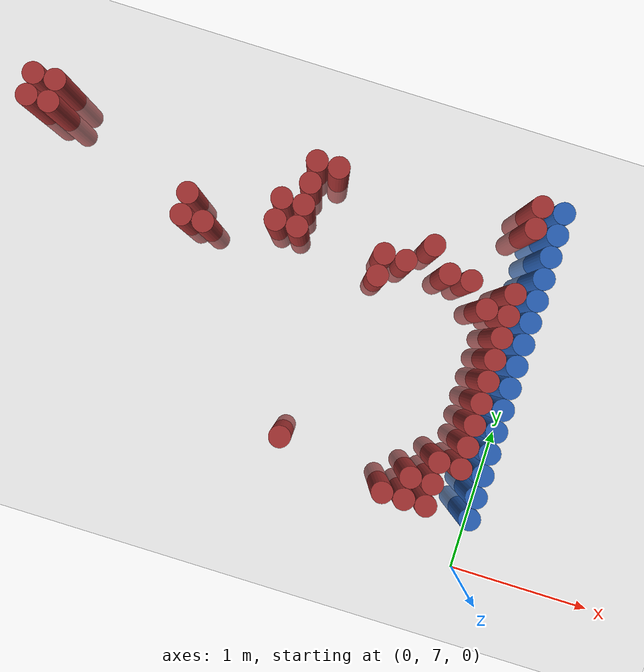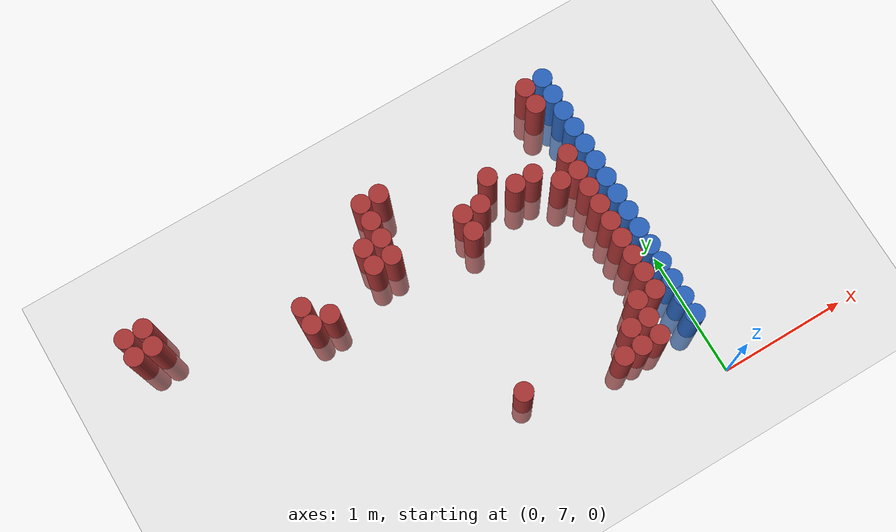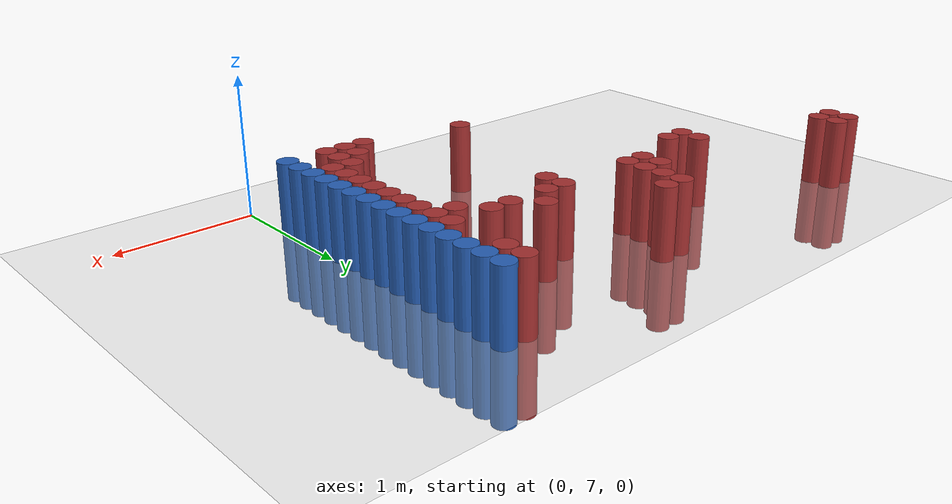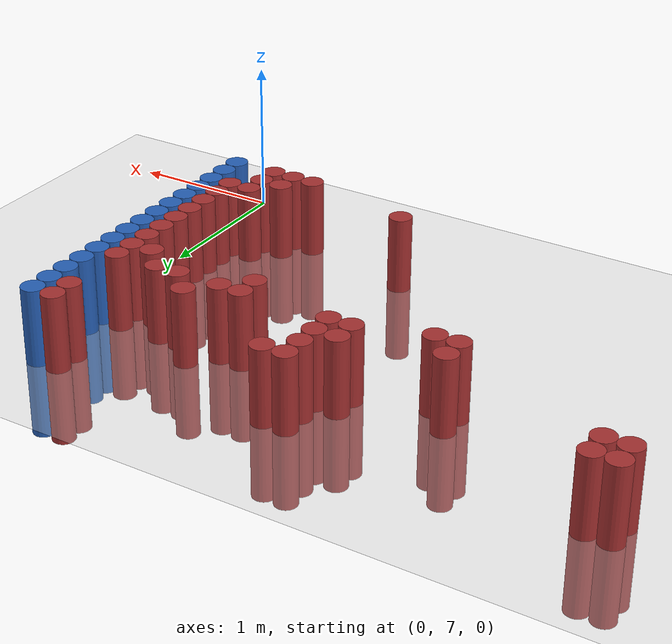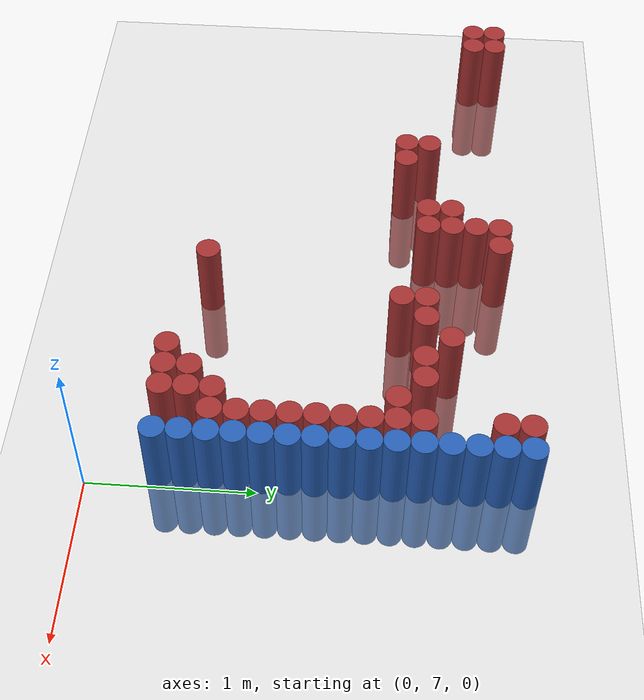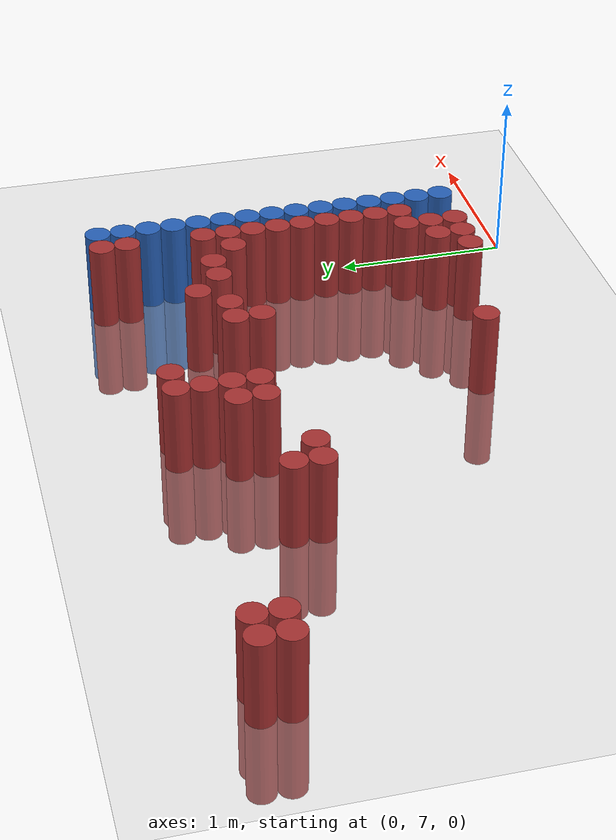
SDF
<sdf version="1.6">
 <world name="world_241">
  <model name="ground_plane">
   <static>1</static>
   <link name="link">
    <collision name="collision">
     <geometry><plane><normal>0 0 1</normal><size>100 100</size></plane></geometry>
     <surface><friction><ode><mu>100</mu><mu2>50</mu2></ode></friction></surface>
    </collision>
    <visual name="visual">
     <cast_shadows>0</cast_shadows>
     <geometry><plane><normal>0 0 1</normal><size>100 100</size></plane></geometry>
     <material>
      <script><uri>file://media/materials/scripts/gazebo.material</uri><name>Gazebo/Grey</name></script>
     </material>
    </visual>
   </link>
  </model>
  <model name="unit_cylinder_154">
   <static>1</static>
   <pose>-3.675000 9.225000 0.000000 0.000000 0.000000 0.000000</pose>
   <link name="link">
    <inertial>
     <mass>1</mass>
     <inertia><ixx>0.145833</ixx><ixy>0</ixy><ixz>0</ixz><iyy>0.145833</iyy><iyz>0</iyz><izz>0.125</izz></inertia>
    </inertial>
    <collision name="collision">
     <geometry><cylinder><radius>0.075000</radius><length>1</length></cylinder></geometry>
    </collision>
    <visual name="visual">
     <geometry><cylinder><radius>0.075000</radius><length>1</length></cylinder></geometry>
     <material>
      <ambient>0.648000 0.192000 0.192000 1</ambient>
      <diffuse>0.648000 0.192000 0.192000 1</diffuse>
     </material>
     <material>
      <script><name>Gazebo/Grey</name><uri>file://media/materials/scripts/gazebo.material</uri></script>
     </material>
    </visual>
   </link>
  </model>
  <model name="unit_cylinder_155">
   <static>1</static>
   <pose>-3.675000 9.375000 0.000000 0.000000 0.000000 0.000000</pose>
   <link name="link">
    <inertial>
     <mass>1</mass>
     <inertia><ixx>0.145833</ixx><ixy>0</ixy><ixz>0</ixz><iyy>0.145833</iyy><iyz>0</iyz><izz>0.125</izz></inertia>
    </inertial>
    <collision name="collision">
     <geometry><cylinder><radius>0.075000</radius><length>1</length></cylinder></geometry>
    </collision>
    <visual name="visual">
     <geometry><cylinder><radius>0.075000</radius><length>1</length></cylinder></geometry>
     <material>
      <ambient>0.648000 0.192000 0.192000 1</ambient>
      <diffuse>0.648000 0.192000 0.192000 1</diffuse>
     </material>
     <material>
      <script><name>Gazebo/Grey</name><uri>file://media/materials/scripts/gazebo.material</uri></script>
     </material>
    </visual>
   </link>
  </model>
  <model name="unit_cylinder_156">
   <static>1</static>
   <pose>-3.525000 9.225000 0.000000 0.000000 0.000000 0.000000</pose>
   <link name="link">
    <inertial>
     <mass>1</mass>
     <inertia><ixx>0.145833</ixx><ixy>0</ixy><ixz>0</ixz><iyy>0.145833</iyy><iyz>0</iyz><izz>0.125</izz></inertia>
    </inertial>
    <collision name="collision">
     <geometry><cylinder><radius>0.075000</radius><length>1</length></cylinder></geometry>
    </collision>
    <visual name="visual">
     <geometry><cylinder><radius>0.075000</radius><length>1</length></cylinder></geometry>
     <material>
      <ambient>0.648000 0.192000 0.192000 1</ambient>
      <diffuse>0.648000 0.192000 0.192000 1</diffuse>
     </material>
     <material>
      <script><name>Gazebo/Grey</name><uri>file://media/materials/scripts/gazebo.material</uri></script>
     </material>
    </visual>
   </link>
  </model>
  <model name="unit_cylinder_157">
   <static>1</static>
   <pose>-3.525000 9.375000 0.000000 0.000000 0.000000 0.000000</pose>
   <link name="link">
    <inertial>
     <mass>1</mass>
     <inertia><ixx>0.145833</ixx><ixy>0</ixy><ixz>0</ixz><iyy>0.145833</iyy><iyz>0</iyz><izz>0.125</izz></inertia>
    </inertial>
    <collision name="collision">
     <geometry><cylinder><radius>0.075000</radius><length>1</length></cylinder></geometry>
    </collision>
    <visual name="visual">
     <geometry><cylinder><radius>0.075000</radius><length>1</length></cylinder></geometry>
     <material>
      <ambient>0.648000 0.192000 0.192000 1</ambient>
      <diffuse>0.648000 0.192000 0.192000 1</diffuse>
     </material>
     <material>
      <script><name>Gazebo/Grey</name><uri>file://media/materials/scripts/gazebo.material</uri></script>
     </material>
    </visual>
   </link>
  </model>
  <model name="unit_cylinder_170">
   <static>1</static>
   <pose>-2.475000 8.775000 0.000000 0.000000 0.000000 0.000000</pose>
   <link name="link">
    <inertial>
     <mass>1</mass>
     <inertia><ixx>0.145833</ixx><ixy>0</ixy><ixz>0</ixz><iyy>0.145833</iyy><iyz>0</iyz><izz>0.125</izz></inertia>
    </inertial>
    <collision name="collision">
     <geometry><cylinder><radius>0.075000</radius><length>1</length></cylinder></geometry>
    </collision>
    <visual name="visual">
     <geometry><cylinder><radius>0.075000</radius><length>1</length></cylinder></geometry>
     <material>
      <ambient>0.648000 0.192000 0.192000 1</ambient>
      <diffuse>0.648000 0.192000 0.192000 1</diffuse>
     </material>
     <material>
      <script><name>Gazebo/Grey</name><uri>file://media/materials/scripts/gazebo.material</uri></script>
     </material>
    </visual>
   </link>
  </model>
  <model name="unit_cylinder_171">
   <static>1</static>
   <pose>-2.475000 8.925000 0.000000 0.000000 0.000000 0.000000</pose>
   <link name="link">
    <inertial>
     <mass>1</mass>
     <inertia><ixx>0.145833</ixx><ixy>0</ixy><ixz>0</ixz><iyy>0.145833</iyy><iyz>0</iyz><izz>0.125</izz></inertia>
    </inertial>
    <collision name="collision">
     <geometry><cylinder><radius>0.075000</radius><length>1</length></cylinder></geometry>
    </collision>
    <visual name="visual">
     <geometry><cylinder><radius>0.075000</radius><length>1</length></cylinder></geometry>
     <material>
      <ambient>0.648000 0.192000 0.192000 1</ambient>
      <diffuse>0.648000 0.192000 0.192000 1</diffuse>
     </material>
     <material>
      <script><name>Gazebo/Grey</name><uri>file://media/materials/scripts/gazebo.material</uri></script>
     </material>
    </visual>
   </link>
  </model>
  <model name="unit_cylinder_175">
   <static>1</static>
   <pose>-2.325000 8.775000 0.000000 0.000000 0.000000 0.000000</pose>
   <link name="link">
    <inertial>
     <mass>1</mass>
     <inertia><ixx>0.145833</ixx><ixy>0</ixy><ixz>0</ixz><iyy>0.145833</iyy><iyz>0</iyz><izz>0.125</izz></inertia>
    </inertial>
    <collision name="collision">
     <geometry><cylinder><radius>0.075000</radius><length>1</length></cylinder></geometry>
    </collision>
    <visual name="visual">
     <geometry><cylinder><radius>0.075000</radius><length>1</length></cylinder></geometry>
     <material>
      <ambient>0.648000 0.192000 0.192000 1</ambient>
      <diffuse>0.648000 0.192000 0.192000 1</diffuse>
     </material>
     <material>
      <script><name>Gazebo/Grey</name><uri>file://media/materials/scripts/gazebo.material</uri></script>
     </material>
    </visual>
   </link>
  </model>
  <model name="unit_cylinder_182">
   <static>1</static>
   <pose>-1.875000 8.925000 0.000000 0.000000 0.000000 0.000000</pose>
   <link name="link">
    <inertial>
     <mass>1</mass>
     <inertia><ixx>0.145833</ixx><ixy>0</ixy><ixz>0</ixz><iyy>0.145833</iyy><iyz>0</iyz><izz>0.125</izz></inertia>
    </inertial>
    <collision name="collision">
     <geometry><cylinder><radius>0.075000</radius><length>1</length></cylinder></geometry>
    </collision>
    <visual name="visual">
     <geometry><cylinder><radius>0.075000</radius><length>1</length></cylinder></geometry>
     <material>
      <ambient>0.648000 0.192000 0.192000 1</ambient>
      <diffuse>0.648000 0.192000 0.192000 1</diffuse>
     </material>
     <material>
      <script><name>Gazebo/Grey</name><uri>file://media/materials/scripts/gazebo.material</uri></script>
     </material>
    </visual>
   </link>
  </model>
  <model name="unit_cylinder_183">
   <static>1</static>
   <pose>-1.875000 9.075000 0.000000 0.000000 0.000000 0.000000</pose>
   <link name="link">
    <inertial>
     <mass>1</mass>
     <inertia><ixx>0.145833</ixx><ixy>0</ixy><ixz>0</ixz><iyy>0.145833</iyy><iyz>0</iyz><izz>0.125</izz></inertia>
    </inertial>
    <collision name="collision">
     <geometry><cylinder><radius>0.075000</radius><length>1</length></cylinder></geometry>
    </collision>
    <visual name="visual">
     <geometry><cylinder><radius>0.075000</radius><length>1</length></cylinder></geometry>
     <material>
      <ambient>0.648000 0.192000 0.192000 1</ambient>
      <diffuse>0.648000 0.192000 0.192000 1</diffuse>
     </material>
     <material>
      <script><name>Gazebo/Grey</name><uri>file://media/materials/scripts/gazebo.material</uri></script>
     </material>
    </visual>
   </link>
  </model>
  <model name="unit_cylinder_184">
   <static>1</static>
   <pose>-1.725000 8.925000 0.000000 0.000000 0.000000 0.000000</pose>
   <link name="link">
    <inertial>
     <mass>1</mass>
     <inertia><ixx>0.145833</ixx><ixy>0</ixy><ixz>0</ixz><iyy>0.145833</iyy><iyz>0</iyz><izz>0.125</izz></inertia>
    </inertial>
    <collision name="collision">
     <geometry><cylinder><radius>0.075000</radius><length>1</length></cylinder></geometry>
    </collision>
    <visual name="visual">
     <geometry><cylinder><radius>0.075000</radius><length>1</length></cylinder></geometry>
     <material>
      <ambient>0.648000 0.192000 0.192000 1</ambient>
      <diffuse>0.648000 0.192000 0.192000 1</diffuse>
     </material>
     <material>
      <script><name>Gazebo/Grey</name><uri>file://media/materials/scripts/gazebo.material</uri></script>
     </material>
    </visual>
   </link>
  </model>
  <model name="unit_cylinder_185">
   <static>1</static>
   <pose>-1.725000 9.075000 0.000000 0.000000 0.000000 0.000000</pose>
   <link name="link">
    <inertial>
     <mass>1</mass>
     <inertia><ixx>0.145833</ixx><ixy>0</ixy><ixz>0</ixz><iyy>0.145833</iyy><iyz>0</iyz><izz>0.125</izz></inertia>
    </inertial>
    <collision name="collision">
     <geometry><cylinder><radius>0.075000</radius><length>1</length></cylinder></geometry>
    </collision>
    <visual name="visual">
     <geometry><cylinder><radius>0.075000</radius><length>1</length></cylinder></geometry>
     <material>
      <ambient>0.648000 0.192000 0.192000 1</ambient>
      <diffuse>0.648000 0.192000 0.192000 1</diffuse>
     </material>
     <material>
      <script><name>Gazebo/Grey</name><uri>file://media/materials/scripts/gazebo.material</uri></script>
     </material>
    </visual>
   </link>
  </model>
  <model name="unit_cylinder_186">
   <static>1</static>
   <pose>-1.725000 9.225000 0.000000 0.000000 0.000000 0.000000</pose>
   <link name="link">
    <inertial>
     <mass>1</mass>
     <inertia><ixx>0.145833</ixx><ixy>0</ixy><ixz>0</ixz><iyy>0.145833</iyy><iyz>0</iyz><izz>0.125</izz></inertia>
    </inertial>
    <collision name="collision">
     <geometry><cylinder><radius>0.075000</radius><length>1</length></cylinder></geometry>
    </collision>
    <visual name="visual">
     <geometry><cylinder><radius>0.075000</radius><length>1</length></cylinder></geometry>
     <material>
      <ambient>0.648000 0.192000 0.192000 1</ambient>
      <diffuse>0.648000 0.192000 0.192000 1</diffuse>
     </material>
     <material>
      <script><name>Gazebo/Grey</name><uri>file://media/materials/scripts/gazebo.material</uri></script>
     </material>
    </visual>
   </link>
  </model>
  <model name="unit_cylinder_187">
   <static>1</static>
   <pose>-1.725000 9.375000 0.000000 0.000000 0.000000 0.000000</pose>
   <link name="link">
    <inertial>
     <mass>1</mass>
     <inertia><ixx>0.145833</ixx><ixy>0</ixy><ixz>0</ixz><iyy>0.145833</iyy><iyz>0</iyz><izz>0.125</izz></inertia>
    </inertial>
    <collision name="collision">
     <geometry><cylinder><radius>0.075000</radius><length>1</length></cylinder></geometry>
    </collision>
    <visual name="visual">
     <geometry><cylinder><radius>0.075000</radius><length>1</length></cylinder></geometry>
     <material>
      <ambient>0.648000 0.192000 0.192000 1</ambient>
      <diffuse>0.648000 0.192000 0.192000 1</diffuse>
     </material>
     <material>
      <script><name>Gazebo/Grey</name><uri>file://media/materials/scripts/gazebo.material</uri></script>
     </material>
    </visual>
   </link>
  </model>
  <model name="unit_cylinder_189">
   <static>1</static>
   <pose>-1.575000 9.375000 0.000000 0.000000 0.000000 0.000000</pose>
   <link name="link">
    <inertial>
     <mass>1</mass>
     <inertia><ixx>0.145833</ixx><ixy>0</ixy><ixz>0</ixz><iyy>0.145833</iyy><iyz>0</iyz><izz>0.125</izz></inertia>
    </inertial>
    <collision name="collision">
     <geometry><cylinder><radius>0.075000</radius><length>1</length></cylinder></geometry>
    </collision>
    <visual name="visual">
     <geometry><cylinder><radius>0.075000</radius><length>1</length></cylinder></geometry>
     <material>
      <ambient>0.648000 0.192000 0.192000 1</ambient>
      <diffuse>0.648000 0.192000 0.192000 1</diffuse>
     </material>
     <material>
      <script><name>Gazebo/Grey</name><uri>file://media/materials/scripts/gazebo.material</uri></script>
     </material>
    </visual>
   </link>
  </model>
  <model name="unit_cylinder_193">
   <static>1</static>
   <pose>-1.425000 7.575000 0.000000 0.000000 0.000000 0.000000</pose>
   <link name="link">
    <inertial>
     <mass>1</mass>
     <inertia><ixx>0.145833</ixx><ixy>0</ixy><ixz>0</ixz><iyy>0.145833</iyy><iyz>0</iyz><izz>0.125</izz></inertia>
    </inertial>
    <collision name="collision">
     <geometry><cylinder><radius>0.075000</radius><length>1</length></cylinder></geometry>
    </collision>
    <visual name="visual">
     <geometry><cylinder><radius>0.075000</radius><length>1</length></cylinder></geometry>
     <material>
      <ambient>0.648000 0.192000 0.192000 1</ambient>
      <diffuse>0.648000 0.192000 0.192000 1</diffuse>
     </material>
     <material>
      <script><name>Gazebo/Grey</name><uri>file://media/materials/scripts/gazebo.material</uri></script>
     </material>
    </visual>
   </link>
  </model>
  <model name="unit_cylinder_198">
   <static>1</static>
   <pose>-1.125000 8.775000 0.000000 0.000000 0.000000 0.000000</pose>
   <link name="link">
    <inertial>
     <mass>1</mass>
     <inertia><ixx>0.145833</ixx><ixy>0</ixy><ixz>0</ixz><iyy>0.145833</iyy><iyz>0</iyz><izz>0.125</izz></inertia>
    </inertial>
    <collision name="collision">
     <geometry><cylinder><radius>0.075000</radius><length>1</length></cylinder></geometry>
    </collision>
    <visual name="visual">
     <geometry><cylinder><radius>0.075000</radius><length>1</length></cylinder></geometry>
     <material>
      <ambient>0.648000 0.192000 0.192000 1</ambient>
      <diffuse>0.648000 0.192000 0.192000 1</diffuse>
     </material>
     <material>
      <script><name>Gazebo/Grey</name><uri>file://media/materials/scripts/gazebo.material</uri></script>
     </material>
    </visual>
   </link>
  </model>
  <model name="unit_cylinder_199">
   <static>1</static>
   <pose>-1.125000 8.925000 0.000000 0.000000 0.000000 0.000000</pose>
   <link name="link">
    <inertial>
     <mass>1</mass>
     <inertia><ixx>0.145833</ixx><ixy>0</ixy><ixz>0</ixz><iyy>0.145833</iyy><iyz>0</iyz><izz>0.125</izz></inertia>
    </inertial>
    <collision name="collision">
     <geometry><cylinder><radius>0.075000</radius><length>1</length></cylinder></geometry>
    </collision>
    <visual name="visual">
     <geometry><cylinder><radius>0.075000</radius><length>1</length></cylinder></geometry>
     <material>
      <ambient>0.648000 0.192000 0.192000 1</ambient>
      <diffuse>0.648000 0.192000 0.192000 1</diffuse>
     </material>
     <material>
      <script><name>Gazebo/Grey</name><uri>file://media/materials/scripts/gazebo.material</uri></script>
     </material>
    </visual>
   </link>
  </model>
  <model name="unit_cylinder_200">
   <static>1</static>
   <pose>-0.975000 8.925000 0.000000 0.000000 0.000000 0.000000</pose>
   <link name="link">
    <inertial>
     <mass>1</mass>
     <inertia><ixx>0.145833</ixx><ixy>0</ixy><ixz>0</ixz><iyy>0.145833</iyy><iyz>0</iyz><izz>0.125</izz></inertia>
    </inertial>
    <collision name="collision">
     <geometry><cylinder><radius>0.075000</radius><length>1</length></cylinder></geometry>
    </collision>
    <visual name="visual">
     <geometry><cylinder><radius>0.075000</radius><length>1</length></cylinder></geometry>
     <material>
      <ambient>0.648000 0.192000 0.192000 1</ambient>
      <diffuse>0.648000 0.192000 0.192000 1</diffuse>
     </material>
     <material>
      <script><name>Gazebo/Grey</name><uri>file://media/materials/scripts/gazebo.material</uri></script>
     </material>
    </visual>
   </link>
  </model>
  <model name="unit_cylinder_201">
   <static>1</static>
   <pose>-0.825000 9.075000 0.000000 0.000000 0.000000 0.000000</pose>
   <link name="link">
    <inertial>
     <mass>1</mass>
     <inertia><ixx>0.145833</ixx><ixy>0</ixy><ixz>0</ixz><iyy>0.145833</iyy><iyz>0</iyz><izz>0.125</izz></inertia>
    </inertial>
    <collision name="collision">
     <geometry><cylinder><radius>0.075000</radius><length>1</length></cylinder></geometry>
    </collision>
    <visual name="visual">
     <geometry><cylinder><radius>0.075000</radius><length>1</length></cylinder></geometry>
     <material>
      <ambient>0.648000 0.192000 0.192000 1</ambient>
      <diffuse>0.648000 0.192000 0.192000 1</diffuse>
     </material>
     <material>
      <script><name>Gazebo/Grey</name><uri>file://media/materials/scripts/gazebo.material</uri></script>
     </material>
    </visual>
   </link>
  </model>
  <model name="unit_cylinder_204">
   <static>1</static>
   <pose>-0.675000 7.425000 0.000000 0.000000 0.000000 0.000000</pose>
   <link name="link">
    <inertial>
     <mass>1</mass>
     <inertia><ixx>0.145833</ixx><ixy>0</ixy><ixz>0</ixz><iyy>0.145833</iyy><iyz>0</iyz><izz>0.125</izz></inertia>
    </inertial>
    <collision name="collision">
     <geometry><cylinder><radius>0.075000</radius><length>1</length></cylinder></geometry>
    </collision>
    <visual name="visual">
     <geometry><cylinder><radius>0.075000</radius><length>1</length></cylinder></geometry>
     <material>
      <ambient>0.648000 0.192000 0.192000 1</ambient>
      <diffuse>0.648000 0.192000 0.192000 1</diffuse>
     </material>
     <material>
      <script><name>Gazebo/Grey</name><uri>file://media/materials/scripts/gazebo.material</uri></script>
     </material>
    </visual>
   </link>
  </model>
  <model name="unit_cylinder_205">
   <static>1</static>
   <pose>-0.675000 8.925000 0.000000 0.000000 0.000000 0.000000</pose>
   <link name="link">
    <inertial>
     <mass>1</mass>
     <inertia><ixx>0.145833</ixx><ixy>0</ixy><ixz>0</ixz><iyy>0.145833</iyy><iyz>0</iyz><izz>0.125</izz></inertia>
    </inertial>
    <collision name="collision">
     <geometry><cylinder><radius>0.075000</radius><length>1</length></cylinder></geometry>
    </collision>
    <visual name="visual">
     <geometry><cylinder><radius>0.075000</radius><length>1</length></cylinder></geometry>
     <material>
      <ambient>0.648000 0.192000 0.192000 1</ambient>
      <diffuse>0.648000 0.192000 0.192000 1</diffuse>
     </material>
     <material>
      <script><name>Gazebo/Grey</name><uri>file://media/materials/scripts/gazebo.material</uri></script>
     </material>
    </visual>
   </link>
  </model>
  <model name="unit_cylinder_209">
   <static>1</static>
   <pose>-0.525000 7.425000 0.000000 0.000000 0.000000 0.000000</pose>
   <link name="link">
    <inertial>
     <mass>1</mass>
     <inertia><ixx>0.145833</ixx><ixy>0</ixy><ixz>0</ixz><iyy>0.145833</iyy><iyz>0</iyz><izz>0.125</izz></inertia>
    </inertial>
    <collision name="collision">
     <geometry><cylinder><radius>0.075000</radius><length>1</length></cylinder></geometry>
    </collision>
    <visual name="visual">
     <geometry><cylinder><radius>0.075000</radius><length>1</length></cylinder></geometry>
     <material>
      <ambient>0.648000 0.192000 0.192000 1</ambient>
      <diffuse>0.648000 0.192000 0.192000 1</diffuse>
     </material>
     <material>
      <script><name>Gazebo/Grey</name><uri>file://media/materials/scripts/gazebo.material</uri></script>
     </material>
    </visual>
   </link>
  </model>
  <model name="unit_cylinder_210">
   <static>1</static>
   <pose>-0.525000 7.575000 0.000000 0.000000 0.000000 0.000000</pose>
   <link name="link">
    <inertial>
     <mass>1</mass>
     <inertia><ixx>0.145833</ixx><ixy>0</ixy><ixz>0</ixz><iyy>0.145833</iyy><iyz>0</iyz><izz>0.125</izz></inertia>
    </inertial>
    <collision name="collision">
     <geometry><cylinder><radius>0.075000</radius><length>1</length></cylinder></geometry>
    </collision>
    <visual name="visual">
     <geometry><cylinder><radius>0.075000</radius><length>1</length></cylinder></geometry>
     <material>
      <ambient>0.648000 0.192000 0.192000 1</ambient>
      <diffuse>0.648000 0.192000 0.192000 1</diffuse>
     </material>
     <material>
      <script><name>Gazebo/Grey</name><uri>file://media/materials/scripts/gazebo.material</uri></script>
     </material>
    </visual>
   </link>
  </model>
  <model name="unit_cylinder_211">
   <static>1</static>
   <pose>-0.525000 8.925000 0.000000 0.000000 0.000000 0.000000</pose>
   <link name="link">
    <inertial>
     <mass>1</mass>
     <inertia><ixx>0.145833</ixx><ixy>0</ixy><ixz>0</ixz><iyy>0.145833</iyy><iyz>0</iyz><izz>0.125</izz></inertia>
    </inertial>
    <collision name="collision">
     <geometry><cylinder><radius>0.075000</radius><length>1</length></cylinder></geometry>
    </collision>
    <visual name="visual">
     <geometry><cylinder><radius>0.075000</radius><length>1</length></cylinder></geometry>
     <material>
      <ambient>0.648000 0.192000 0.192000 1</ambient>
      <diffuse>0.648000 0.192000 0.192000 1</diffuse>
     </material>
     <material>
      <script><name>Gazebo/Grey</name><uri>file://media/materials/scripts/gazebo.material</uri></script>
     </material>
    </visual>
   </link>
  </model>
  <model name="unit_cylinder_220">
   <static>1</static>
   <pose>-0.375000 7.425000 0.000000 0.000000 0.000000 0.000000</pose>
   <link name="link">
    <inertial>
     <mass>1</mass>
     <inertia><ixx>0.145833</ixx><ixy>0</ixy><ixz>0</ixz><iyy>0.145833</iyy><iyz>0</iyz><izz>0.125</izz></inertia>
    </inertial>
    <collision name="collision">
     <geometry><cylinder><radius>0.075000</radius><length>1</length></cylinder></geometry>
    </collision>
    <visual name="visual">
     <geometry><cylinder><radius>0.075000</radius><length>1</length></cylinder></geometry>
     <material>
      <ambient>0.648000 0.192000 0.192000 1</ambient>
      <diffuse>0.648000 0.192000 0.192000 1</diffuse>
     </material>
     <material>
      <script><name>Gazebo/Grey</name><uri>file://media/materials/scripts/gazebo.material</uri></script>
     </material>
    </visual>
   </link>
  </model>
  <model name="unit_cylinder_221">
   <static>1</static>
   <pose>-0.375000 7.575000 0.000000 0.000000 0.000000 0.000000</pose>
   <link name="link">
    <inertial>
     <mass>1</mass>
     <inertia><ixx>0.145833</ixx><ixy>0</ixy><ixz>0</ixz><iyy>0.145833</iyy><iyz>0</iyz><izz>0.125</izz></inertia>
    </inertial>
    <collision name="collision">
     <geometry><cylinder><radius>0.075000</radius><length>1</length></cylinder></geometry>
    </collision>
    <visual name="visual">
     <geometry><cylinder><radius>0.075000</radius><length>1</length></cylinder></geometry>
     <material>
      <ambient>0.648000 0.192000 0.192000 1</ambient>
      <diffuse>0.648000 0.192000 0.192000 1</diffuse>
     </material>
     <material>
      <script><name>Gazebo/Grey</name><uri>file://media/materials/scripts/gazebo.material</uri></script>
     </material>
    </visual>
   </link>
  </model>
  <model name="unit_cylinder_222">
   <static>1</static>
   <pose>-0.375000 7.725000 0.000000 0.000000 0.000000 0.000000</pose>
   <link name="link">
    <inertial>
     <mass>1</mass>
     <inertia><ixx>0.145833</ixx><ixy>0</ixy><ixz>0</ixz><iyy>0.145833</iyy><iyz>0</iyz><izz>0.125</izz></inertia>
    </inertial>
    <collision name="collision">
     <geometry><cylinder><radius>0.075000</radius><length>1</length></cylinder></geometry>
    </collision>
    <visual name="visual">
     <geometry><cylinder><radius>0.075000</radius><length>1</length></cylinder></geometry>
     <material>
      <ambient>0.648000 0.192000 0.192000 1</ambient>
      <diffuse>0.648000 0.192000 0.192000 1</diffuse>
     </material>
     <material>
      <script><name>Gazebo/Grey</name><uri>file://media/materials/scripts/gazebo.material</uri></script>
     </material>
    </visual>
   </link>
  </model>
  <model name="unit_cylinder_223">
   <static>1</static>
   <pose>-0.375000 8.775000 0.000000 0.000000 0.000000 0.000000</pose>
   <link name="link">
    <inertial>
     <mass>1</mass>
     <inertia><ixx>0.145833</ixx><ixy>0</ixy><ixz>0</ixz><iyy>0.145833</iyy><iyz>0</iyz><izz>0.125</izz></inertia>
    </inertial>
    <collision name="collision">
     <geometry><cylinder><radius>0.075000</radius><length>1</length></cylinder></geometry>
    </collision>
    <visual name="visual">
     <geometry><cylinder><radius>0.075000</radius><length>1</length></cylinder></geometry>
     <material>
      <ambient>0.648000 0.192000 0.192000 1</ambient>
      <diffuse>0.648000 0.192000 0.192000 1</diffuse>
     </material>
     <material>
      <script><name>Gazebo/Grey</name><uri>file://media/materials/scripts/gazebo.material</uri></script>
     </material>
    </visual>
   </link>
  </model>
  <model name="unit_cylinder_229">
   <static>1</static>
   <pose>-0.225000 7.725000 0.000000 0.000000 0.000000 0.000000</pose>
   <link name="link">
    <inertial>
     <mass>1</mass>
     <inertia><ixx>0.145833</ixx><ixy>0</ixy><ixz>0</ixz><iyy>0.145833</iyy><iyz>0</iyz><izz>0.125</izz></inertia>
    </inertial>
    <collision name="collision">
     <geometry><cylinder><radius>0.075000</radius><length>1</length></cylinder></geometry>
    </collision>
    <visual name="visual">
     <geometry><cylinder><radius>0.075000</radius><length>1</length></cylinder></geometry>
     <material>
      <ambient>0.648000 0.192000 0.192000 1</ambient>
      <diffuse>0.648000 0.192000 0.192000 1</diffuse>
     </material>
     <material>
      <script><name>Gazebo/Grey</name><uri>file://media/materials/scripts/gazebo.material</uri></script>
     </material>
    </visual>
   </link>
  </model>
  <model name="unit_cylinder_230">
   <static>1</static>
   <pose>-0.225000 7.875000 0.000000 0.000000 0.000000 0.000000</pose>
   <link name="link">
    <inertial>
     <mass>1</mass>
     <inertia><ixx>0.145833</ixx><ixy>0</ixy><ixz>0</ixz><iyy>0.145833</iyy><iyz>0</iyz><izz>0.125</izz></inertia>
    </inertial>
    <collision name="collision">
     <geometry><cylinder><radius>0.075000</radius><length>1</length></cylinder></geometry>
    </collision>
    <visual name="visual">
     <geometry><cylinder><radius>0.075000</radius><length>1</length></cylinder></geometry>
     <material>
      <ambient>0.648000 0.192000 0.192000 1</ambient>
      <diffuse>0.648000 0.192000 0.192000 1</diffuse>
     </material>
     <material>
      <script><name>Gazebo/Grey</name><uri>file://media/materials/scripts/gazebo.material</uri></script>
     </material>
    </visual>
   </link>
  </model>
  <model name="unit_cylinder_231">
   <static>1</static>
   <pose>-0.225000 8.025000 0.000000 0.000000 0.000000 0.000000</pose>
   <link name="link">
    <inertial>
     <mass>1</mass>
     <inertia><ixx>0.145833</ixx><ixy>0</ixy><ixz>0</ixz><iyy>0.145833</iyy><iyz>0</iyz><izz>0.125</izz></inertia>
    </inertial>
    <collision name="collision">
     <geometry><cylinder><radius>0.075000</radius><length>1</length></cylinder></geometry>
    </collision>
    <visual name="visual">
     <geometry><cylinder><radius>0.075000</radius><length>1</length></cylinder></geometry>
     <material>
      <ambient>0.648000 0.192000 0.192000 1</ambient>
      <diffuse>0.648000 0.192000 0.192000 1</diffuse>
     </material>
     <material>
      <script><name>Gazebo/Grey</name><uri>file://media/materials/scripts/gazebo.material</uri></script>
     </material>
    </visual>
   </link>
  </model>
  <model name="unit_cylinder_232">
   <static>1</static>
   <pose>-0.225000 8.175000 0.000000 0.000000 0.000000 0.000000</pose>
   <link name="link">
    <inertial>
     <mass>1</mass>
     <inertia><ixx>0.145833</ixx><ixy>0</ixy><ixz>0</ixz><iyy>0.145833</iyy><iyz>0</iyz><izz>0.125</izz></inertia>
    </inertial>
    <collision name="collision">
     <geometry><cylinder><radius>0.075000</radius><length>1</length></cylinder></geometry>
    </collision>
    <visual name="visual">
     <geometry><cylinder><radius>0.075000</radius><length>1</length></cylinder></geometry>
     <material>
      <ambient>0.648000 0.192000 0.192000 1</ambient>
      <diffuse>0.648000 0.192000 0.192000 1</diffuse>
     </material>
     <material>
      <script><name>Gazebo/Grey</name><uri>file://media/materials/scripts/gazebo.material</uri></script>
     </material>
    </visual>
   </link>
  </model>
  <model name="unit_cylinder_233">
   <static>1</static>
   <pose>-0.225000 8.325000 0.000000 0.000000 0.000000 0.000000</pose>
   <link name="link">
    <inertial>
     <mass>1</mass>
     <inertia><ixx>0.145833</ixx><ixy>0</ixy><ixz>0</ixz><iyy>0.145833</iyy><iyz>0</iyz><izz>0.125</izz></inertia>
    </inertial>
    <collision name="collision">
     <geometry><cylinder><radius>0.075000</radius><length>1</length></cylinder></geometry>
    </collision>
    <visual name="visual">
     <geometry><cylinder><radius>0.075000</radius><length>1</length></cylinder></geometry>
     <material>
      <ambient>0.648000 0.192000 0.192000 1</ambient>
      <diffuse>0.648000 0.192000 0.192000 1</diffuse>
     </material>
     <material>
      <script><name>Gazebo/Grey</name><uri>file://media/materials/scripts/gazebo.material</uri></script>
     </material>
    </visual>
   </link>
  </model>
  <model name="unit_cylinder_234">
   <static>1</static>
   <pose>-0.225000 8.475000 0.000000 0.000000 0.000000 0.000000</pose>
   <link name="link">
    <inertial>
     <mass>1</mass>
     <inertia><ixx>0.145833</ixx><ixy>0</ixy><ixz>0</ixz><iyy>0.145833</iyy><iyz>0</iyz><izz>0.125</izz></inertia>
    </inertial>
    <collision name="collision">
     <geometry><cylinder><radius>0.075000</radius><length>1</length></cylinder></geometry>
    </collision>
    <visual name="visual">
     <geometry><cylinder><radius>0.075000</radius><length>1</length></cylinder></geometry>
     <material>
      <ambient>0.648000 0.192000 0.192000 1</ambient>
      <diffuse>0.648000 0.192000 0.192000 1</diffuse>
     </material>
     <material>
      <script><name>Gazebo/Grey</name><uri>file://media/materials/scripts/gazebo.material</uri></script>
     </material>
    </visual>
   </link>
  </model>
  <model name="unit_cylinder_235">
   <static>1</static>
   <pose>-0.225000 8.625000 0.000000 0.000000 0.000000 0.000000</pose>
   <link name="link">
    <inertial>
     <mass>1</mass>
     <inertia><ixx>0.145833</ixx><ixy>0</ixy><ixz>0</ixz><iyy>0.145833</iyy><iyz>0</iyz><izz>0.125</izz></inertia>
    </inertial>
    <collision name="collision">
     <geometry><cylinder><radius>0.075000</radius><length>1</length></cylinder></geometry>
    </collision>
    <visual name="visual">
     <geometry><cylinder><radius>0.075000</radius><length>1</length></cylinder></geometry>
     <material>
      <ambient>0.648000 0.192000 0.192000 1</ambient>
      <diffuse>0.648000 0.192000 0.192000 1</diffuse>
     </material>
     <material>
      <script><name>Gazebo/Grey</name><uri>file://media/materials/scripts/gazebo.material</uri></script>
     </material>
    </visual>
   </link>
  </model>
  <model name="unit_cylinder_236">
   <static>1</static>
   <pose>-0.225000 8.775000 0.000000 0.000000 0.000000 0.000000</pose>
   <link name="link">
    <inertial>
     <mass>1</mass>
     <inertia><ixx>0.145833</ixx><ixy>0</ixy><ixz>0</ixz><iyy>0.145833</iyy><iyz>0</iyz><izz>0.125</izz></inertia>
    </inertial>
    <collision name="collision">
     <geometry><cylinder><radius>0.075000</radius><length>1</length></cylinder></geometry>
    </collision>
    <visual name="visual">
     <geometry><cylinder><radius>0.075000</radius><length>1</length></cylinder></geometry>
     <material>
      <ambient>0.648000 0.192000 0.192000 1</ambient>
      <diffuse>0.648000 0.192000 0.192000 1</diffuse>
     </material>
     <material>
      <script><name>Gazebo/Grey</name><uri>file://media/materials/scripts/gazebo.material</uri></script>
     </material>
    </visual>
   </link>
  </model>
  <model name="unit_cylinder_237">
   <static>1</static>
   <pose>-0.225000 8.925000 0.000000 0.000000 0.000000 0.000000</pose>
   <link name="link">
    <inertial>
     <mass>1</mass>
     <inertia><ixx>0.145833</ixx><ixy>0</ixy><ixz>0</ixz><iyy>0.145833</iyy><iyz>0</iyz><izz>0.125</izz></inertia>
    </inertial>
    <collision name="collision">
     <geometry><cylinder><radius>0.075000</radius><length>1</length></cylinder></geometry>
    </collision>
    <visual name="visual">
     <geometry><cylinder><radius>0.075000</radius><length>1</length></cylinder></geometry>
     <material>
      <ambient>0.648000 0.192000 0.192000 1</ambient>
      <diffuse>0.648000 0.192000 0.192000 1</diffuse>
     </material>
     <material>
      <script><name>Gazebo/Grey</name><uri>file://media/materials/scripts/gazebo.material</uri></script>
     </material>
    </visual>
   </link>
  </model>
  <model name="unit_cylinder_238">
   <static>1</static>
   <pose>-0.225000 9.375000 0.000000 0.000000 0.000000 0.000000</pose>
   <link name="link">
    <inertial>
     <mass>1</mass>
     <inertia><ixx>0.145833</ixx><ixy>0</ixy><ixz>0</ixz><iyy>0.145833</iyy><iyz>0</iyz><izz>0.125</izz></inertia>
    </inertial>
    <collision name="collision">
     <geometry><cylinder><radius>0.075000</radius><length>1</length></cylinder></geometry>
    </collision>
    <visual name="visual">
     <geometry><cylinder><radius>0.075000</radius><length>1</length></cylinder></geometry>
     <material>
      <ambient>0.648000 0.192000 0.192000 1</ambient>
      <diffuse>0.648000 0.192000 0.192000 1</diffuse>
     </material>
     <material>
      <script><name>Gazebo/Grey</name><uri>file://media/materials/scripts/gazebo.material</uri></script>
     </material>
    </visual>
   </link>
  </model>
  <model name="unit_cylinder_239">
   <static>1</static>
   <pose>-0.225000 9.525000 0.000000 0.000000 0.000000 0.000000</pose>
   <link name="link">
    <inertial>
     <mass>1</mass>
     <inertia><ixx>0.145833</ixx><ixy>0</ixy><ixz>0</ixz><iyy>0.145833</iyy><iyz>0</iyz><izz>0.125</izz></inertia>
    </inertial>
    <collision name="collision">
     <geometry><cylinder><radius>0.075000</radius><length>1</length></cylinder></geometry>
    </collision>
    <visual name="visual">
     <geometry><cylinder><radius>0.075000</radius><length>1</length></cylinder></geometry>
     <material>
      <ambient>0.648000 0.192000 0.192000 1</ambient>
      <diffuse>0.648000 0.192000 0.192000 1</diffuse>
     </material>
     <material>
      <script><name>Gazebo/Grey</name><uri>file://media/materials/scripts/gazebo.material</uri></script>
     </material>
    </visual>
   </link>
  </model>
  <model name="unit_cylinder_255">
   <static>1</static>
   <pose>-0.075000 7.425000 0.000000 0.000000 0.000000 0.000000</pose>
   <link name="link">
    <inertial>
     <mass>1</mass>
     <inertia><ixx>0.145833</ixx><ixy>0</ixy><ixz>0</ixz><iyy>0.145833</iyy><iyz>0</iyz><izz>0.125</izz></inertia>
    </inertial>
    <collision name="collision">
     <geometry><cylinder><radius>0.075000</radius><length>1</length></cylinder></geometry>
    </collision>
    <visual name="visual">
     <geometry><cylinder><radius>0.075000</radius><length>1</length></cylinder></geometry>
     <material>
      <ambient>0.152000 0.379000 0.720000 1</ambient>
      <diffuse>0.152000 0.379000 0.720000 1</diffuse>
     </material>
     <material>
      <script><name>Gazebo/Grey</name><uri>file://media/materials/scripts/gazebo.material</uri></script>
     </material>
    </visual>
   </link>
  </model>
  <model name="unit_cylinder_256">
   <static>1</static>
   <pose>-0.075000 7.575000 0.000000 0.000000 0.000000 0.000000</pose>
   <link name="link">
    <inertial>
     <mass>1</mass>
     <inertia><ixx>0.145833</ixx><ixy>0</ixy><ixz>0</ixz><iyy>0.145833</iyy><iyz>0</iyz><izz>0.125</izz></inertia>
    </inertial>
    <collision name="collision">
     <geometry><cylinder><radius>0.075000</radius><length>1</length></cylinder></geometry>
    </collision>
    <visual name="visual">
     <geometry><cylinder><radius>0.075000</radius><length>1</length></cylinder></geometry>
     <material>
      <ambient>0.152000 0.379000 0.720000 1</ambient>
      <diffuse>0.152000 0.379000 0.720000 1</diffuse>
     </material>
     <material>
      <script><name>Gazebo/Grey</name><uri>file://media/materials/scripts/gazebo.material</uri></script>
     </material>
    </visual>
   </link>
  </model>
  <model name="unit_cylinder_257">
   <static>1</static>
   <pose>-0.075000 7.725000 0.000000 0.000000 0.000000 0.000000</pose>
   <link name="link">
    <inertial>
     <mass>1</mass>
     <inertia><ixx>0.145833</ixx><ixy>0</ixy><ixz>0</ixz><iyy>0.145833</iyy><iyz>0</iyz><izz>0.125</izz></inertia>
    </inertial>
    <collision name="collision">
     <geometry><cylinder><radius>0.075000</radius><length>1</length></cylinder></geometry>
    </collision>
    <visual name="visual">
     <geometry><cylinder><radius>0.075000</radius><length>1</length></cylinder></geometry>
     <material>
      <ambient>0.152000 0.379000 0.720000 1</ambient>
      <diffuse>0.152000 0.379000 0.720000 1</diffuse>
     </material>
     <material>
      <script><name>Gazebo/Grey</name><uri>file://media/materials/scripts/gazebo.material</uri></script>
     </material>
    </visual>
   </link>
  </model>
  <model name="unit_cylinder_258">
   <static>1</static>
   <pose>-0.075000 7.875000 0.000000 0.000000 0.000000 0.000000</pose>
   <link name="link">
    <inertial>
     <mass>1</mass>
     <inertia><ixx>0.145833</ixx><ixy>0</ixy><ixz>0</ixz><iyy>0.145833</iyy><iyz>0</iyz><izz>0.125</izz></inertia>
    </inertial>
    <collision name="collision">
     <geometry><cylinder><radius>0.075000</radius><length>1</length></cylinder></geometry>
    </collision>
    <visual name="visual">
     <geometry><cylinder><radius>0.075000</radius><length>1</length></cylinder></geometry>
     <material>
      <ambient>0.152000 0.379000 0.720000 1</ambient>
      <diffuse>0.152000 0.379000 0.720000 1</diffuse>
     </material>
     <material>
      <script><name>Gazebo/Grey</name><uri>file://media/materials/scripts/gazebo.material</uri></script>
     </material>
    </visual>
   </link>
  </model>
  <model name="unit_cylinder_259">
   <static>1</static>
   <pose>-0.075000 8.025000 0.000000 0.000000 0.000000 0.000000</pose>
   <link name="link">
    <inertial>
     <mass>1</mass>
     <inertia><ixx>0.145833</ixx><ixy>0</ixy><ixz>0</ixz><iyy>0.145833</iyy><iyz>0</iyz><izz>0.125</izz></inertia>
    </inertial>
    <collision name="collision">
     <geometry><cylinder><radius>0.075000</radius><length>1</length></cylinder></geometry>
    </collision>
    <visual name="visual">
     <geometry><cylinder><radius>0.075000</radius><length>1</length></cylinder></geometry>
     <material>
      <ambient>0.152000 0.379000 0.720000 1</ambient>
      <diffuse>0.152000 0.379000 0.720000 1</diffuse>
     </material>
     <material>
      <script><name>Gazebo/Grey</name><uri>file://media/materials/scripts/gazebo.material</uri></script>
     </material>
    </visual>
   </link>
  </model>
  <model name="unit_cylinder_260">
   <static>1</static>
   <pose>-0.075000 8.175000 0.000000 0.000000 0.000000 0.000000</pose>
   <link name="link">
    <inertial>
     <mass>1</mass>
     <inertia><ixx>0.145833</ixx><ixy>0</ixy><ixz>0</ixz><iyy>0.145833</iyy><iyz>0</iyz><izz>0.125</izz></inertia>
    </inertial>
    <collision name="collision">
     <geometry><cylinder><radius>0.075000</radius><length>1</length></cylinder></geometry>
    </collision>
    <visual name="visual">
     <geometry><cylinder><radius>0.075000</radius><length>1</length></cylinder></geometry>
     <material>
      <ambient>0.152000 0.379000 0.720000 1</ambient>
      <diffuse>0.152000 0.379000 0.720000 1</diffuse>
     </material>
     <material>
      <script><name>Gazebo/Grey</name><uri>file://media/materials/scripts/gazebo.material</uri></script>
     </material>
    </visual>
   </link>
  </model>
  <model name="unit_cylinder_261">
   <static>1</static>
   <pose>-0.075000 8.325000 0.000000 0.000000 0.000000 0.000000</pose>
   <link name="link">
    <inertial>
     <mass>1</mass>
     <inertia><ixx>0.145833</ixx><ixy>0</ixy><ixz>0</ixz><iyy>0.145833</iyy><iyz>0</iyz><izz>0.125</izz></inertia>
    </inertial>
    <collision name="collision">
     <geometry><cylinder><radius>0.075000</radius><length>1</length></cylinder></geometry>
    </collision>
    <visual name="visual">
     <geometry><cylinder><radius>0.075000</radius><length>1</length></cylinder></geometry>
     <material>
      <ambient>0.152000 0.379000 0.720000 1</ambient>
      <diffuse>0.152000 0.379000 0.720000 1</diffuse>
     </material>
     <material>
      <script><name>Gazebo/Grey</name><uri>file://media/materials/scripts/gazebo.material</uri></script>
     </material>
    </visual>
   </link>
  </model>
  <model name="unit_cylinder_262">
   <static>1</static>
   <pose>-0.075000 8.475000 0.000000 0.000000 0.000000 0.000000</pose>
   <link name="link">
    <inertial>
     <mass>1</mass>
     <inertia><ixx>0.145833</ixx><ixy>0</ixy><ixz>0</ixz><iyy>0.145833</iyy><iyz>0</iyz><izz>0.125</izz></inertia>
    </inertial>
    <collision name="collision">
     <geometry><cylinder><radius>0.075000</radius><length>1</length></cylinder></geometry>
    </collision>
    <visual name="visual">
     <geometry><cylinder><radius>0.075000</radius><length>1</length></cylinder></geometry>
     <material>
      <ambient>0.152000 0.379000 0.720000 1</ambient>
      <diffuse>0.152000 0.379000 0.720000 1</diffuse>
     </material>
     <material>
      <script><name>Gazebo/Grey</name><uri>file://media/materials/scripts/gazebo.material</uri></script>
     </material>
    </visual>
   </link>
  </model>
  <model name="unit_cylinder_263">
   <static>1</static>
   <pose>-0.075000 8.625000 0.000000 0.000000 0.000000 0.000000</pose>
   <link name="link">
    <inertial>
     <mass>1</mass>
     <inertia><ixx>0.145833</ixx><ixy>0</ixy><ixz>0</ixz><iyy>0.145833</iyy><iyz>0</iyz><izz>0.125</izz></inertia>
    </inertial>
    <collision name="collision">
     <geometry><cylinder><radius>0.075000</radius><length>1</length></cylinder></geometry>
    </collision>
    <visual name="visual">
     <geometry><cylinder><radius>0.075000</radius><length>1</length></cylinder></geometry>
     <material>
      <ambient>0.152000 0.379000 0.720000 1</ambient>
      <diffuse>0.152000 0.379000 0.720000 1</diffuse>
     </material>
     <material>
      <script><name>Gazebo/Grey</name><uri>file://media/materials/scripts/gazebo.material</uri></script>
     </material>
    </visual>
   </link>
  </model>
  <model name="unit_cylinder_264">
   <static>1</static>
   <pose>-0.075000 8.775000 0.000000 0.000000 0.000000 0.000000</pose>
   <link name="link">
    <inertial>
     <mass>1</mass>
     <inertia><ixx>0.145833</ixx><ixy>0</ixy><ixz>0</ixz><iyy>0.145833</iyy><iyz>0</iyz><izz>0.125</izz></inertia>
    </inertial>
    <collision name="collision">
     <geometry><cylinder><radius>0.075000</radius><length>1</length></cylinder></geometry>
    </collision>
    <visual name="visual">
     <geometry><cylinder><radius>0.075000</radius><length>1</length></cylinder></geometry>
     <material>
      <ambient>0.152000 0.379000 0.720000 1</ambient>
      <diffuse>0.152000 0.379000 0.720000 1</diffuse>
     </material>
     <material>
      <script><name>Gazebo/Grey</name><uri>file://media/materials/scripts/gazebo.material</uri></script>
     </material>
    </visual>
   </link>
  </model>
  <model name="unit_cylinder_265">
   <static>1</static>
   <pose>-0.075000 8.925000 0.000000 0.000000 0.000000 0.000000</pose>
   <link name="link">
    <inertial>
     <mass>1</mass>
     <inertia><ixx>0.145833</ixx><ixy>0</ixy><ixz>0</ixz><iyy>0.145833</iyy><iyz>0</iyz><izz>0.125</izz></inertia>
    </inertial>
    <collision name="collision">
     <geometry><cylinder><radius>0.075000</radius><length>1</length></cylinder></geometry>
    </collision>
    <visual name="visual">
     <geometry><cylinder><radius>0.075000</radius><length>1</length></cylinder></geometry>
     <material>
      <ambient>0.152000 0.379000 0.720000 1</ambient>
      <diffuse>0.152000 0.379000 0.720000 1</diffuse>
     </material>
     <material>
      <script><name>Gazebo/Grey</name><uri>file://media/materials/scripts/gazebo.material</uri></script>
     </material>
    </visual>
   </link>
  </model>
  <model name="unit_cylinder_266">
   <static>1</static>
   <pose>-0.075000 9.075000 0.000000 0.000000 0.000000 0.000000</pose>
   <link name="link">
    <inertial>
     <mass>1</mass>
     <inertia><ixx>0.145833</ixx><ixy>0</ixy><ixz>0</ixz><iyy>0.145833</iyy><iyz>0</iyz><izz>0.125</izz></inertia>
    </inertial>
    <collision name="collision">
     <geometry><cylinder><radius>0.075000</radius><length>1</length></cylinder></geometry>
    </collision>
    <visual name="visual">
     <geometry><cylinder><radius>0.075000</radius><length>1</length></cylinder></geometry>
     <material>
      <ambient>0.152000 0.379000 0.720000 1</ambient>
      <diffuse>0.152000 0.379000 0.720000 1</diffuse>
     </material>
     <material>
      <script><name>Gazebo/Grey</name><uri>file://media/materials/scripts/gazebo.material</uri></script>
     </material>
    </visual>
   </link>
  </model>
  <model name="unit_cylinder_267">
   <static>1</static>
   <pose>-0.075000 9.225000 0.000000 0.000000 0.000000 0.000000</pose>
   <link name="link">
    <inertial>
     <mass>1</mass>
     <inertia><ixx>0.145833</ixx><ixy>0</ixy><ixz>0</ixz><iyy>0.145833</iyy><iyz>0</iyz><izz>0.125</izz></inertia>
    </inertial>
    <collision name="collision">
     <geometry><cylinder><radius>0.075000</radius><length>1</length></cylinder></geometry>
    </collision>
    <visual name="visual">
     <geometry><cylinder><radius>0.075000</radius><length>1</length></cylinder></geometry>
     <material>
      <ambient>0.152000 0.379000 0.720000 1</ambient>
      <diffuse>0.152000 0.379000 0.720000 1</diffuse>
     </material>
     <material>
      <script><name>Gazebo/Grey</name><uri>file://media/materials/scripts/gazebo.material</uri></script>
     </material>
    </visual>
   </link>
  </model>
  <model name="unit_cylinder_268">
   <static>1</static>
   <pose>-0.075000 9.375000 0.000000 0.000000 0.000000 0.000000</pose>
   <link name="link">
    <inertial>
     <mass>1</mass>
     <inertia><ixx>0.145833</ixx><ixy>0</ixy><ixz>0</ixz><iyy>0.145833</iyy><iyz>0</iyz><izz>0.125</izz></inertia>
    </inertial>
    <collision name="collision">
     <geometry><cylinder><radius>0.075000</radius><length>1</length></cylinder></geometry>
    </collision>
    <visual name="visual">
     <geometry><cylinder><radius>0.075000</radius><length>1</length></cylinder></geometry>
     <material>
      <ambient>0.152000 0.379000 0.720000 1</ambient>
      <diffuse>0.152000 0.379000 0.720000 1</diffuse>
     </material>
     <material>
      <script><name>Gazebo/Grey</name><uri>file://media/materials/scripts/gazebo.material</uri></script>
     </material>
    </visual>
   </link>
  </model>
  <model name="unit_cylinder_269">
   <static>1</static>
   <pose>-0.075000 9.525000 0.000000 0.000000 0.000000 0.000000</pose>
   <link name="link">
    <inertial>
     <mass>1</mass>
     <inertia><ixx>0.145833</ixx><ixy>0</ixy><ixz>0</ixz><iyy>0.145833</iyy><iyz>0</iyz><izz>0.125</izz></inertia>
    </inertial>
    <collision name="collision">
     <geometry><cylinder><radius>0.075000</radius><length>1</length></cylinder></geometry>
    </collision>
    <visual name="visual">
     <geometry><cylinder><radius>0.075000</radius><length>1</length></cylinder></geometry>
     <material>
      <ambient>0.152000 0.379000 0.720000 1</ambient>
      <diffuse>0.152000 0.379000 0.720000 1</diffuse>
     </material>
     <material>
      <script><name>Gazebo/Grey</name><uri>file://media/materials/scripts/gazebo.material</uri></script>
     </material>
    </visual>
   </link>
  </model>
 </world>
</sdf>
